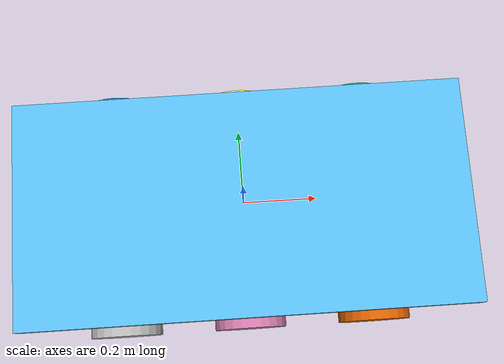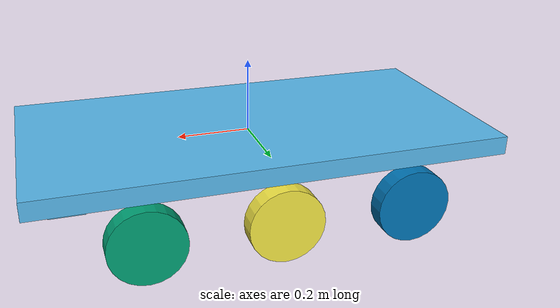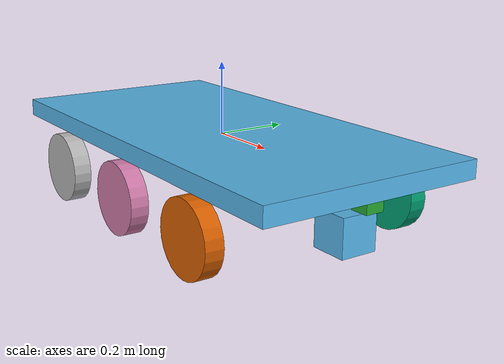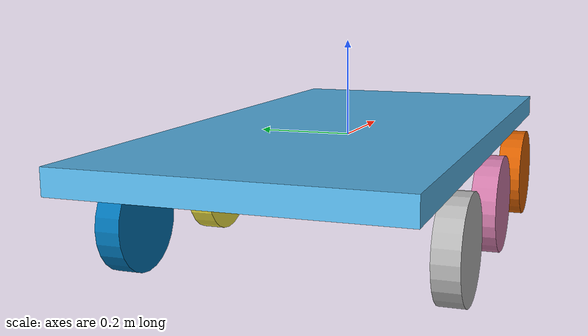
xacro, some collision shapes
<?xml version='1.0'?>

<robot name="my_udacity_bot" xmlns:xacro="http://www.ros.org/wiki/xacro">

  <xacro:include filename="$(find my_udacity_bot)/urdf/udacity_bot.gazebo"/>
  <link name="robot_footprint"/>

  <joint name="robot_footprint_joint" type="fixed">
    <origin xyz="0 0 0" rpy="0 0 0" />
    <parent link="robot_footprint"/>
    <child link="chassis"/>
  </joint>

  <joint name="left_front_wheel_hinge" type="continuous">
    <origin xyz=".35 0.3125 -0.130" rpy="0 0 0"/>
    <child link="left_front_wheel"/>
    <parent link="chassis"/>
    <axis xyz="0 1 0" rpy="0 0 0"/>
    <limit effort="10000" velocity="1000"/>
    <dynamics damping="1.0" friction="1.0"/>
  </joint>

  <joint name="left_wheel_hinge" type="continuous">
    <origin xyz="0 0.3125 -.130" rpy="0 0 0"/>
    <child link="left_wheel"/>
    <parent link="chassis"/>
    <axis xyz="0 1 0" rpy="0 0 0"/>
    <limit effort="10000" velocity="1000"/>
    <dynamics damping="1.0" friction="1.0"/>
  </joint>

  <joint name="left_rear_wheel_hinge" type="continuous">
    <origin xyz="-.35 0.3125 -0.130" rpy="0 0 0"/>
    <child link="left_rear_wheel"/>
    <parent link="chassis"/>
    <axis xyz="0 1 0" rpy="0 0 0"/>
    <limit effort="10000" velocity="1000"/>
    <dynamics damping="1.0" friction="1.0"/>
  </joint>

  <joint name="right_front_wheel_hinge" type="continuous">
    <origin xyz="0.35 -0.3125 -0.130" rpy="0 0 0"/>
    <child link="right_front_wheel"/>
    <parent link="chassis"/>
    <axis xyz="0 1 0" rpy="0 0 0"/>
    <limit effort="10000" velocity="1000"/>
    <dynamics damping="1.0" friction="1.0"/>
  </joint>

  <joint name="right_wheel_hinge" type="continuous">
    <origin xyz="0 -0.3125 -0.130" rpy="0 0 0"/>
    <child link="right_wheel"/>
    <parent link="chassis"/>
    <axis xyz="0 1 0" rpy="0 0 0"/>
    <limit effort="10000" velocity="1000"/>
    <dynamics damping="1.0" friction="1.0"/>
  </joint>

  <joint name="right_rear_wheel_hinge" type="continuous">
    <origin xyz="-0.35 -0.3125 -0.130" rpy="0 0 0"/>
    <child link="right_rear_wheel"/>
    <parent link="chassis"/>
    <axis xyz="0 1 0" rpy="0 0 0"/>
    <limit effort="10000" velocity="1000"/>
    <dynamics damping="1.0" friction="1.0"/>
  </joint>

  <joint name="camera_joint" type="fixed">
    <origin xyz="0.59 0 -.030" rpy="0 0 0"/>
    <parent link="chassis"/>
    <child link="camera"/>
  </joint>

  <joint name="hokuyo_joint" type="fixed">
    <origin xyz="0.52 0.0 -.12" rpy="0 0 0"/>
    <parent link="chassis"/>
    <child link="hokuyo"/>
  </joint>

  <link name='chassis'>

    <pose> 0 0 0.230 0 0 0</pose>

    <inertial>
      <mass value="15.0"/>
      <origin xyz="0.0 0 0" rpy=" 0 0 0"/>
      <inertia
        ixx="0.1" ixy="0" ixz="0"
        iyy="0.1" iyz="0"
        izz="0.1"
      />
    </inertial>

    <collision name='collision'>
      <origin xyz="0 0 0" rpy=" 0 0 0"/>
      <geometry>
        <box size="1.25 .625 .05"/>
      </geometry>
    </collision>

    <visual name='chassis_visual'>
      <origin xyz="0 0 0" rpy=" 0 0 0"/>
      <geometry>
        <mesh filename="package://my_udacity_bot/meshes/mybot.dae"/>
      </geometry>
    </visual>

  </link>

  <link name="left_front_wheel">

    <inertial>
      <mass value="5"/>
      <origin xyz="0 0 0" rpy="0 1.5707 1.5707"/>
      <inertia
        ixx="0.1" ixy="0" ixz="0"
        iyy="0.1" iyz="0"
        izz="0.1"
      />
    </inertial>

    <visual>
      <origin xyz="0 0 0" rpy="0 1.5707 1.5707"/>
      <geometry>
        <cylinder radius="0.1" length="0.05"/>
      </geometry>
    </visual>

    <collision>
      <origin xyz="0 0 0" rpy="0 1.5707 1.5707"/>
      <geometry>
        <cylinder radius="0.0999" length="0.05"/>
      </geometry>
    </collision>
  </link>

 <link name="left_wheel">

    <inertial>
      <mass value="5"/>
      <origin xyz="0 0 0" rpy="0 1.5707 1.5707"/>
      <inertia
        ixx="0.1" ixy="0" ixz="0"
        iyy="0.1" iyz="0"
        izz="0.1"
      />
    </inertial>

    <visual>
      <origin xyz="0 0 0" rpy="0 1.5707 1.5707"/>
      <geometry>
        <cylinder radius="0.1" length="0.05"/>
      </geometry>
    </visual>

    <collision>
      <origin xyz="0 0 0" rpy="0 1.5707 1.5707"/>
      <geometry>
        <cylinder radius="0.1" length="0.05"/>
      </geometry>
    </collision>
  </link>

 <link name="left_rear_wheel">

    <inertial>
      <mass value="5"/>
      <origin xyz="0 0 0" rpy="0 1.5707 1.5707"/>
      <inertia
        ixx="0.1" ixy="0" ixz="0"
        iyy="0.1" iyz="0"
        izz="0.1"
      />
    </inertial>

    <visual>
      <origin xyz="0 0 0" rpy="0 1.5707 1.5707"/>
      <geometry>
        <cylinder radius="0.1" length="0.05"/>
      </geometry>
    </visual>

    <collision>
      <origin xyz="0 0 0" rpy="0 1.5707 1.5707"/>
      <geometry>
        <cylinder radius="0.0999" length="0.05"/>
      </geometry>
    </collision>
  </link>

  <link name="right_front_wheel">

    <inertial>
      <mass value="5"/>
      <origin xyz="0 0 0" rpy="0 1.5707 1.5707"/>
      <inertia
        ixx="0.1" ixy="0" ixz="0"
        iyy="0.1" iyz="0"
        izz="0.1"
      />
    </inertial>

    <visual>
      <origin xyz="0 0 0" rpy="0 1.5707 1.5707"/>
      <geometry>
        <cylinder radius="0.1" length="0.05"/>
      </geometry>
    </visual>

    <collision>
      <origin xyz="0 0 0" rpy="0 1.5707 1.5707"/>
      <geometry>
        <cylinder radius="0.0999" length="0.05"/>
      </geometry>
    </collision>
  </link>

  <link name="right_wheel">

    <inertial>
      <mass value="5"/>
      <origin xyz="0 0 0" rpy="0 1.5707 1.5707"/>
      <inertia
        ixx="0.1" ixy="0" ixz="0"
        iyy="0.1" iyz="0"
        izz="0.1"
      />
    </inertial>

    <visual>
      <origin xyz="0 0 0" rpy="0 1.5707 1.5707"/>
      <geometry>
        <cylinder radius="0.1" length="0.05"/>
      </geometry>
    </visual>

    <collision>
      <origin xyz="0 0 0" rpy="0 1.5707 1.5707"/>
      <geometry>
        <cylinder radius="0.1" length="0.05"/>
      </geometry>
    </collision>
  </link>

  <link name="right_rear_wheel">

    <inertial>
      <mass value="5"/>
      <origin xyz="0 0 0" rpy="0 1.5707 1.5707"/>
      <inertia
        ixx="0.1" ixy="0" ixz="0"
        iyy="0.1" iyz="0"
        izz="0.1"
      />
    </inertial>

    <visual>
      <origin xyz="0 0 0" rpy="0 1.5707 1.5707"/>
      <geometry>
        <cylinder radius="0.1" length="0.05"/>
      </geometry>
    </visual>

    <collision>
      <origin xyz="0 0 0" rpy="0 1.5707 1.5707"/>
      <geometry>
        <cylinder radius="0.0999" length="0.05"/>
      </geometry>
    </collision>
  </link>

  <link name="camera">
    <inertial>
      <mass value="0.1"/>
      <origin xyz="0 0 0" rpy="0 0 0"/>
      <inertia
        ixx="1e-6" ixy="0" ixz="0"
        iyy="1e-6" iyz="0"
        izz="1e-6"
       />
    </inertial>

    <visual>
      <origin xyz="0 0 0" rpy="0 0 0"/>
      <geometry>
        <box size=".05 .05 .05"/>
      </geometry>
    </visual>

    <collision>
      <origin xyz="0 0 0" rpy="0 0 0"/>
      <geometry>
        <box size=".05 .05 .05"/>
      </geometry>
    </collision>
  </link>

  <link name="hokuyo">
    <inertial>
      <mass value="0.1"/>
      <origin xyz="0 0 0" rpy="0 0 0"/>
      <inertia
        ixx="1e-6" ixy="0" ixz="0"
        iyy="1e-6" iyz="0"
        izz="1e-6"
       />
    </inertial>

    <visual>
      <origin xyz="0 0 0" rpy="0 0 0"/>
      <geometry>
        <mesh filename="package://my_udacity_bot/meshes/hokuyo.dae"/>
      </geometry>
    </visual>

    <collision>
      <origin xyz="0 0 0" rpy="0 0 0"/>
      <geometry>
        <box size="0.1 0.1 0.1"/>
      </geometry>
    </collision>
  </link>

</robot>
